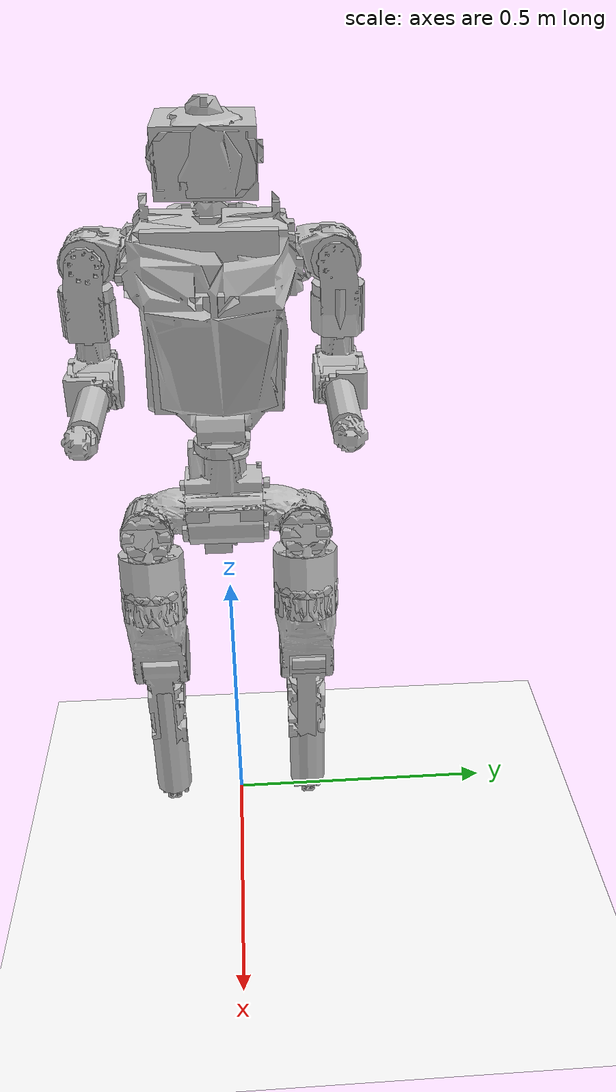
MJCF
<mujoco model="vt_human_v2">
  <compiler angle="radian" meshdir="meshes/"/>

  <asset>
    <mesh name="base_link" content_type="model/stl" file="base_link.STL"/>
    <mesh name="left_hip_pitch_link" content_type="model/stl" file="left_hip_pitch_link.STL"/>
    <mesh name="left_hip_roll_link" content_type="model/stl" file="left_hip_roll_link.STL"/>
    <mesh name="left_hip_yaw_link" content_type="model/stl" file="left_hip_yaw_link.STL"/>
    <mesh name="left_knee_link" content_type="model/stl" file="left_knee_link.STL"/>
    <mesh name="left_ankle_pitch_link" content_type="model/stl" file="left_ankle_pitch_link.STL"/>
    <mesh name="left_ankle_roll_link" content_type="model/stl" file="left_ankle_roll_link.STL"/>
    <mesh name="right_hip_pitch_link" content_type="model/stl" file="right_hip_pitch_link.STL"/>
    <mesh name="right_hip_roll_link" content_type="model/stl" file="right_hip_roll_link.STL"/>
    <mesh name="right_hip_yaw_link" content_type="model/stl" file="right_hip_yaw_link.STL"/>
    <mesh name="right_knee_link" content_type="model/stl" file="right_knee_link.STL"/>
    <mesh name="right_ankle_pitch_link" content_type="model/stl" file="right_ankle_pitch_link.STL"/>
    <mesh name="right_ankle_roll_link" content_type="model/stl" file="right_ankle_roll_link.STL"/>
    <mesh name="waist_yaw_link" content_type="model/stl" file="waist_yaw_link.STL"/>
    <mesh name="waist_pitch_link" content_type="model/stl" file="waist_pitch_link.STL"/>
    <mesh name="left_shoulder_pitch_link" content_type="model/stl" file="left_shoulder_pitch_link.STL"/>
    <mesh name="left_shoulder_roll_link" content_type="model/stl" file="left_shoulder_roll_link.STL"/>
    <mesh name="left_shoulder_yaw_link" content_type="model/stl" file="left_shoulder_yaw_link.STL"/>
    <mesh name="left_elbow_link" content_type="model/stl" file="left_elbow_link.STL"/>
    <mesh name="right_shoulder_pitch_link" content_type="model/stl" file="right_shoulder_pitch_link.STL"/>
    <mesh name="right_shoulder_roll_link" content_type="model/stl" file="right_shoulder_roll_link.STL"/>
    <mesh name="right_shoulder_yaw_link" content_type="model/stl" file="right_shoulder_yaw_link.STL"/>
    <mesh name="right_elbow_link" content_type="model/stl" file="right_elbow_link.STL"/>

    <texture type="skybox" builtin="gradient" rgb1="1 1 1" rgb2="1 1 1" width="800" height="800"/>
    <texture type="2d" name="groundplane" builtin="checker" mark="edge" rgb1="1 1 1" rgb2="1 1 1" markrgb="0 0 0" width="300" height="300"/>
    <material name="groundplane" texture="groundplane" texuniform="true" texrepeat="5 5" reflectance="0"/>
  </asset>

    <visual>
    <headlight diffuse="0.6 0.6 0.6" ambient="0.1 0.1 0.1" specular="0.9 0.9 0.9"/>
    <rgba haze="0.15 0.25 0.35 1"/>
    <global azimuth="-140" elevation="-20" offwidth="2080" offheight="1170"/>
  </visual>

  <worldbody>
    <geom name="floor" size="0 0 0.01" type="plane" material="groundplane" contype="1" conaffinity="0" priority="1" friction="0.6" condim="3"/>
    <light diffuse=".5 .5 .5" pos="-3 -3 5" dir="3 3 -5" castshadow="true"/>

    <body name="base_link" pos="0 0 0.66">
      <inertial pos="0.00090486 -0.000693 0.0175537" quat="0.979884 0.199257 -0.0108125 0.00283359" mass="4.0106" diaginertia="0.0148956 0.0108377 0.0101691"/>
      <joint type="free"/>
      <geom type="mesh" contype="0" conaffinity="0" group="1" density="0" rgba="0.75294 0.75294 0.75294 1" mesh="base_link"/>
      <geom name="collision_pelvis_cylinder" size="0.06 0.065" quat="0.707105 0.707108 0 0" type="cylinder" rgba="0.75294 0.75294 0.75294 1"/>
      <body name="left_hip_pitch_link" pos="0 0.0757 0">
        <inertial pos="0.0125617 0.0569469 -0.0236546" quat="0.903925 0.41117 -0.117625 -0.00477622" mass="1.36296" diaginertia="0.00191632 0.00175385 0.00125078"/>
        <joint name="left_hip_pitch_joint" pos="0 0 0" axis="0 1 0" range="-1.745 2.8793" actuatorfrcrange="-120 120" armature="0.0101775"/>
        <geom type="mesh" contype="0" conaffinity="0" group="1" density="0" rgba="0.75294 0.75294 0.75294 1" mesh="left_hip_pitch_link"/>
        <geom type="mesh" contype="0" conaffinity="0" group="1" density="0" rgba="0.75294 0.75294 0.75294 1" mesh="left_hip_pitch_link"/>
        <body name="left_hip_roll_link" pos="0.0052098 0.062252 -0.029546">
          <inertial pos="0.0154391 0.00026587 -0.0834664" quat="0.710037 -0.0522932 -0.0501596 0.700426" mass="2.02753" diaginertia="0.00494113 0.00448932 0.00331638"/>
          <joint name="left_hip_roll_joint" pos="0 0 0" axis="1 0 0" range="-0.43625 1.74533" actuatorfrcrange="-90 90" armature="0.0101775"/>
          <geom type="mesh" contype="0" conaffinity="0" group="1" density="0" rgba="0.75294 0.75294 0.75294 1" mesh="left_hip_roll_link"/>
          <geom name="collision_l_hip_roll_cylinder" size="0.045 0.055" quat="0.766046 0 0.642786 0" type="cylinder" rgba="0.75294 0.75294 0.75294 1"/>
          <body name="left_hip_yaw_link" pos="0.026626 0 -0.14812">
            <inertial pos="-0.00612202 0.00024003 -0.0640879" quat="0.988436 0.00346207 0.151588 0.00204284" mass="1.19322" diaginertia="0.00556969 0.00511928 0.00276403"/>
            <joint name="left_hip_yaw_joint" pos="0 0 0" axis="0 0 1" range="-1.5705 1.5705" actuatorfrcrange="-120 120" armature="0.0101775"/>
            <geom type="mesh" contype="0" conaffinity="0" group="1" density="0" rgba="0.75294 0.75294 0.75294 1" mesh="left_hip_yaw_link"/>
            <geom name="collision_l_hip_yaw_rotor_cylinder" size="0.052 0.05" pos="-0.03 0 -0.132459" quat="0.707105 0.707108 0 0" type="cylinder" rgba="0.75294 0.75294 0.75294 1"/>
            <geom name="collision_l_hip_yaw_cylinder" size="0.058 0.061" pos="-0.00749 0 0.0418" quat="0.996195 0 -0.0871558 0" type="cylinder" rgba="0.75294 0.75294 0.75294 1"/>
            <body name="left_knee_link" pos="-0.031343 0 -0.13224">
              <inertial pos="0.00161817 0.00073644 -0.0720362" quat="0.698427 -0.00543775 0.000671023 0.71566" mass="2.50645" diaginertia="0.0273956 0.0267048 0.0021891"/>
              <joint name="left_knee_joint" pos="0 0 0" axis="0 1 0" range="-0.08725 2.3034" actuatorfrcrange="-120 120" armature="0.0251019"/>
              <geom type="mesh" contype="0" conaffinity="0" group="1" density="0" rgba="0.75294 0.75294 0.75294 1" mesh="left_knee_link"/>
              <geom name="collision_l_knee_cylinder" size="0.035 0.13" pos="0 0 -0.2" type="cylinder" rgba="0.75294 0.75294 0.75294 1"/>
              <body name="left_ankle_pitch_link" pos="0 0 -0.34">
                <inertial pos="0 0 0" quat="0.5 0.5 -0.5 0.5" mass="0.0416185" diaginertia="4.24e-06 3.57e-06 2.55e-06"/>
                <joint name="left_ankle_pitch_joint" pos="0 0 0" axis="0 1 0" range="-0.95975 0.61075" actuatorfrcrange="-70.5 70.5" armature="0.00721945"/>
                <geom type="mesh" contype="0" conaffinity="0" group="1" density="0" rgba="0.75294 0.75294 0.75294 1" mesh="left_ankle_pitch_link"/>
                <geom type="mesh" contype="0" conaffinity="0" group="1" density="0" rgba="0.75294 0.75294 0.75294 1" mesh="left_ankle_pitch_link"/>
                <body name="left_ankle_roll_link">
                  <inertial pos="-0.00550341 0 -0.0285248" quat="1.19922e-05 0.72728 4.05271e-06 0.686341" mass="0.667902" diaginertia="0.0020583 0.00200653 0.000325888"/>
                  <joint name="left_ankle_roll_joint" pos="0 0 0" axis="1 0 0" range="-0.43625 0.43625" actuatorfrcrange="-70.5 70.5" armature="0.00721945"/>
                  <geom type="mesh" contype="0" conaffinity="0" group="1" density="0" rgba="0.75294 0.75294 0.75294 1" mesh="left_ankle_roll_link"/>
                  <geom name="collision_l_foot0_cylinder" size="0.008 0.025" pos="0.065 0.03 -0.04" quat="0.707105 0 0.707108 0" type="cylinder" rgba="0.75294 0.75294 0.75294 1"/>
                  <geom name="collision_l_foot1_cylinder" size="0.008 0.105" pos="0 0.018 -0.04" quat="0.707105 0 0.707108 0" type="cylinder" rgba="0.75294 0.75294 0.75294 1"/>
                  <geom name="collision_l_foot2_cylinder" size="0.008 0.108" pos="0.001222 0.0117 -0.04" quat="0.707105 0 0.707108 0" type="cylinder" rgba="0.75294 0.75294 0.75294 1"/>
                  <geom name="collision_l_foot3_cylinder" size="0.008 0.11" pos="0.0021 0 -0.04" quat="0.707105 0 0.707108 0" type="cylinder" rgba="0.75294 0.75294 0.75294 1"/>
                  <geom name="collision_l_foot4_cylinder" size="0.008 0.108" pos="0.001222 -0.0117 -0.04" quat="0.707105 0 0.707108 0" type="cylinder" rgba="0.75294 0.75294 0.75294 1"/>
                  <geom name="collision_l_foot5_cylinder" size="0.008 0.105" pos="0 -0.018 -0.04" quat="0.707105 0 0.707108 0" type="cylinder" rgba="0.75294 0.75294 0.75294 1"/>
                  <geom name="collision_l_foot6_cylinder" size="0.008 0.025" pos="0.065 -0.03 -0.04" quat="0.707105 0 0.707108 0" type="cylinder" rgba="0.75294 0.75294 0.75294 1"/>
                        <body name="left_toe_link" pos="0.1 0.0 -0.028"/>
</body>
                      <body name="left_heel_link" pos="-0.09 0.0 -0.028"/>
</body>
            </body>
          </body>
        </body>
      </body>
      <body name="right_hip_pitch_link" pos="0 -0.075698 0">
        <inertial pos="0.0125683 -0.056918 -0.0236958" quat="0.412094 0.903887 0.0119912 0.114122" mass="1.36295" diaginertia="0.00191659 0.00175365 0.00125086"/>
        <joint name="right_hip_pitch_joint" pos="0 0 0" axis="0 1 0" range="-1.745 2.8793" actuatorfrcrange="-120 120" armature="0.0101775"/>
        <geom type="mesh" contype="0" conaffinity="0" group="1" density="0" rgba="0.75294 0.75294 0.75294 1" mesh="right_hip_pitch_link"/>
        <geom type="mesh" contype="0" conaffinity="0" group="1" density="0" rgba="0.75294 0.75294 0.75294 1" mesh="right_hip_pitch_link"/>
        <body name="right_hip_roll_link" pos="0.0052098 -0.062252 -0.029546">
          <inertial pos="0.0153841 -0.00024058 -0.0835207" quat="0.699191 -0.0500302 -0.0525599 0.711243" mass="2.02592" diaginertia="0.00492787 0.00447574 0.0033132"/>
          <joint name="right_hip_roll_joint" pos="0 0 0" axis="1 0 0" range="-1.74533 0.43625" actuatorfrcrange="-90 90" armature="0.0101775"/>
          <geom type="mesh" contype="0" conaffinity="0" group="1" density="0" rgba="0.75294 0.75294 0.75294 1" mesh="right_hip_roll_link"/>
          <geom name="collision_r_hip_roll_cylinder" size="0.045 0.055" quat="0.766046 0 0.642786 0" type="cylinder" rgba="0.75294 0.75294 0.75294 1"/>
          <body name="right_hip_yaw_link" pos="0.0266261 0 -0.148125">
            <inertial pos="-0.00618961 -0.00023919 -0.0640402" quat="0.988289 -0.00376047 0.152453 -0.00529608" mass="1.19323" diaginertia="0.00556671 0.0051156 0.00276347"/>
            <joint name="right_hip_yaw_joint" pos="0 0 0" axis="0 0 1" range="-1.5705 1.5705" actuatorfrcrange="-120 120" armature="0.0101775"/>
            <geom type="mesh" contype="0" conaffinity="0" group="1" density="0" rgba="0.75294 0.75294 0.75294 1" mesh="right_hip_yaw_link"/>
            <geom name="collision_r_hip_yaw_cylinder" size="0.058 0.061" pos="-0.00749 0 0.0418" quat="0.996195 0 -0.0871558 0" type="cylinder" rgba="0.75294 0.75294 0.75294 1"/>
            <geom name="collision_r_hip_yaw_rotor_cylinder" size="0.052 0.05" pos="-0.03 0 -0.132459" quat="0.707105 0.707108 0 0" type="cylinder" rgba="0.75294 0.75294 0.75294 1"/>
            <body name="right_knee_link" pos="-0.031343 0 -0.13224">
              <inertial pos="0.00160942 -0.00073487 -0.0717414" quat="0.716262 0.000917112 -0.00545378 0.69781" mass="2.50337" diaginertia="0.0271914 0.0264983 0.00218801"/>
              <joint name="right_knee_joint" pos="0 0 0" axis="0 1 0" range="-0.08725 2.3034" actuatorfrcrange="-120 120" armature="0.0251019"/>
              <geom type="mesh" contype="0" conaffinity="0" group="1" density="0" rgba="0.75294 0.75294 0.75294 1" mesh="right_knee_link"/>
              <geom name="collision_r_knee_cylinder" size="0.035 0.13" pos="0 0 -0.2" type="cylinder" rgba="0.75294 0.75294 0.75294 1"/>
              <body name="right_ankle_pitch_link" pos="0 0 -0.34">
                <inertial pos="0 0 0" quat="0.5 0.5 -0.5 0.5" mass="0.0416185" diaginertia="4.24e-06 3.57e-06 2.55e-06"/>
                <joint name="right_ankle_pitch_joint" pos="0 0 0" axis="0 1 0" range="-0.95975 0.61075" actuatorfrcrange="-70.5 70.5" armature="0.00721945"/>
                <geom type="mesh" contype="0" conaffinity="0" group="1" density="0" rgba="0.75294 0.75294 0.75294 1" mesh="right_ankle_pitch_link"/>
                <geom type="mesh" contype="0" conaffinity="0" group="1" density="0" rgba="0.75294 0.75294 0.75294 1" mesh="right_ankle_pitch_link"/>
                <body name="right_ankle_roll_link">
                  <inertial pos="-0.00550341 0 -0.0285248" quat="1.19922e-05 0.72728 4.05271e-06 0.686341" mass="0.667902" diaginertia="0.0020583 0.00200653 0.000325888"/>
                  <joint name="right_ankle_roll_joint" pos="0 0 0" axis="1 0 0" range="-0.43625 0.43625" actuatorfrcrange="-70.5 70.5" armature="0.00721945"/>
                  <geom type="mesh" contype="0" conaffinity="0" group="1" density="0" rgba="0.75294 0.75294 0.75294 1" mesh="right_ankle_roll_link"/>
                  <geom name="collision_r_foot0_cylinder" size="0.008 0.025" pos="0.065 0.03 -0.04" quat="0.707105 0 0.707108 0" type="cylinder" rgba="0.75294 0.75294 0.75294 1"/>
                  <geom name="collision_r_foot1_cylinder" size="0.008 0.105" pos="0 0.018 -0.04" quat="0.707105 0 0.707108 0" type="cylinder" rgba="0.75294 0.75294 0.75294 1"/>
                  <geom name="collision_r_foot2_cylinder" size="0.008 0.108" pos="0.001222 0.0117 -0.04" quat="0.707105 0 0.707108 0" type="cylinder" rgba="0.75294 0.75294 0.75294 1"/>
                  <geom name="collision_r_foot3_cylinder" size="0.008 0.11" pos="0.0021 0 -0.04" quat="0.707105 0 0.707108 0" type="cylinder" rgba="0.75294 0.75294 0.75294 1"/>
                  <geom name="collision_r_foot4_cylinder" size="0.008 0.108" pos="0.001222 -0.0117 -0.04" quat="0.707105 0 0.707108 0" type="cylinder" rgba="0.75294 0.75294 0.75294 1"/>
                  <geom name="collision_r_foot5_cylinder" size="0.008 0.105" pos="0 -0.018 -0.04" quat="0.707105 0 0.707108 0" type="cylinder" rgba="0.75294 0.75294 0.75294 1"/>
                  <geom name="collision_r_foot6_cylinder" size="0.008 0.025" pos="0.065 -0.03 -0.04" quat="0.707105 0 0.707108 0" type="cylinder" rgba="0.75294 0.75294 0.75294 1"/>
                        <body name="right_toe_link" pos="0.1 0.0 -0.028"/>
</body>
                      <body name="right_heel_link" pos="-0.09 0.0 -0.028"/>
</body>
            </body>
          </body>
        </body>
      </body>
      <body name="waist_yaw_link" pos="0 0 0.1305">
        <inertial pos="0.00023603 0.00523516 0.0207713" quat="0.507445 0.457888 -0.453106 0.572305" mass="0.418261" diaginertia="0.000508641 0.000479672 0.000436847"/>
        <joint name="waist_yaw_joint" pos="0 0 0" axis="0 0 1" range="-1.5705 1.5705" actuatorfrcrange="-70.5 70.5" armature="0.00721945"/>
        <geom type="mesh" contype="0" conaffinity="0" group="1" density="0" rgba="0.75294 0.75294 0.75294 1" mesh="waist_yaw_link"/>
        <geom name="collision_waist_yaw_cylinder" size="0.04 0.04" pos="0 0 0.035742" quat="0.707105 0.707108 0 0" type="cylinder" rgba="0.75294 0.75294 0.75294 1"/>
        <body name="waist_pitch_link" pos="0 0 0.0395">
          <inertial pos="-0.00034844 -0.00108544 0.198283" quat="0.99987 0.0145648 -0.00355876 0.00587002" mass="11.7993" diaginertia="0.234365 0.194865 0.0877206"/>
          <joint name="waist_pitch_joint" pos="0 0 0" axis="0 1 0" range="-0.78525 0.78525" actuatorfrcrange="-70.5 70.5" armature="0.00721945"/>
          <geom type="mesh" contype="0" conaffinity="0" group="1" density="0" rgba="0.75294 0.75294 0.75294 1" mesh="waist_pitch_link"/>
          <geom name="collision_body_box" size="0.0725435 0.103 0.143595" pos="-0.0134 0 0.183" type="box" rgba="0.75294 0.75294 0.75294 1"/>
          <geom name="collision_head_box" size="0.08 0.075 0.05" pos="0 0 0.425049" type="box" rgba="0.75294 0.75294 0.75294 1"/>
          <body name="left_shoulder_pitch_link" pos="0 0.128491 0.279596">
            <inertial pos="-0.0063373 0.051535 -0.0037644" quat="0.57995 0.385935 -0.415159 0.585111" mass="0.90934" diaginertia="0.00104707 0.000994552 0.000751153"/>
            <joint name="left_shoulder_pitch_joint" pos="0 0 0" axis="0 1 0" range="-2.8269 2.8269" actuatorfrcrange="-60 60" armature="0.00721945"/>
            <geom type="mesh" contype="0" conaffinity="0" group="1" density="0" rgba="0.75294 0.75294 0.75294 1" mesh="left_shoulder_pitch_link"/>
            <geom name="collision_l_shoulder_pitch_cylinder" size="0.038 0.039" pos="-0.0065 0.0609 -0.006" quat="0.707105 0 0.707108 0" type="cylinder" rgba="0.75294 0.75294 0.75294 1"/>
            <body name="left_shoulder_roll_link" pos="-0.0064156 0.061525 -0.007108">
              <inertial pos="0.0064282 0.0057732 -0.07091" quat="0.71155 -0.00827035 -0.0520054 0.70066" mass="0.96873" diaginertia="0.00183764 0.00151536 0.00115819"/>
              <joint name="left_shoulder_roll_joint" pos="0 0 0" axis="1 0 0" range="-0.52001 2.75187" actuatorfrcrange="-60 60" armature="0.00721945"/>
              <geom type="mesh" contype="0" conaffinity="0" group="1" density="0" rgba="0.75294 0.75294 0.75294 1" mesh="left_shoulder_roll_link"/>
              <geom name="collision_l_shoulder_roll_cylinder" size="0.042 0.0375" pos="0.0074 0.00651 -0.079" type="cylinder" rgba="0.75294 0.75294 0.75294 1"/>
              <body name="left_shoulder_yaw_link" pos="0.00689778 0.00616935 -0.111857">
                <inertial pos="0.0091185 -0.00060886 -0.078241" quat="0.736608 -0.122016 -0.08794 0.659384" mass="0.76043" diaginertia="0.000908404 0.000869837 0.000558509"/>
                <joint name="left_shoulder_yaw_joint" pos="0 0 0" axis="0 0 1" range="-2.7397 2.7397" actuatorfrcrange="-60 60" armature="0.00721945"/>
                <geom type="mesh" contype="0" conaffinity="0" group="1" density="0" rgba="0.75294 0.75294 0.75294 1" mesh="left_shoulder_yaw_link"/>
                <geom name="collision_l_shoulder_yaw_cylinder" size="0.04 0.04" pos="0.01148 0 -0.0859" quat="0.707105 0.707108 0 0" type="cylinder" rgba="0.75294 0.75294 0.75294 1"/>
                <body name="left_elbow_link" pos="0.013191 -0.001406 -0.087782">
                  <inertial pos="0.10427 0.013999 0.00011767" quat="0.0368941 0.705087 -0.0619341 0.705447" mass="0.38475" diaginertia="0.00314013 0.00312587 0.000183575"/>
                  <joint name="left_elbow_joint" pos="0 0 0" axis="0 1 0" range="-0.61075 2.7048" actuatorfrcrange="-60 60" armature="0.00721945"/>
                  <geom type="mesh" contype="0" conaffinity="0" group="1" density="0" rgba="0.75294 0.75294 0.75294 1" mesh="left_elbow_link"/>
                  <geom name="collision_l_elbow_cylinder" size="0.025 0.07" pos="0.121617 0 0" quat="0.707105 0 0.707108 0" type="cylinder" rgba="0.75294 0.75294 0.75294 1"/>
                        <body name="left_wrist_task" pos="0.18 0.0 0.0"/>
</body>
              </body>
            </body>
          </body>
          <body name="right_shoulder_pitch_link" pos="0 -0.12949 0.2796">
            <inertial pos="-0.0063373 -0.051535 -0.0037644" quat="0.385935 0.57995 -0.585111 0.415159" mass="0.90934" diaginertia="0.00104707 0.000994552 0.000751153"/>
            <joint name="right_shoulder_pitch_joint" pos="0 0 0" axis="0 1 0" range="-2.8269 2.8269" actuatorfrcrange="-60 60" armature="0.00721945"/>
            <geom type="mesh" contype="0" conaffinity="0" group="1" density="0" rgba="0.75294 0.75294 0.75294 1" mesh="right_shoulder_pitch_link"/>
            <geom name="collision_r_shoulder_pitch_cylinder" size="0.038 0.039" pos="-0.0065 -0.0609 -0.006" quat="0.707105 0 0.707108 0" type="cylinder" rgba="0.75294 0.75294 0.75294 1"/>
            <body name="right_shoulder_roll_link" pos="-0.0065 -0.061519 -0.007086">
              <inertial pos="0.0064282 -0.0057732 -0.07091" quat="0.70066 -0.0520054 -0.00827035 0.71155" mass="0.96873" diaginertia="0.00183764 0.00151536 0.00115819"/>
              <joint name="right_shoulder_roll_joint" pos="0 0 0" axis="1 0 0" range="-2.75187 0.52001" actuatorfrcrange="-60 60" armature="0.00721945"/>
              <geom type="mesh" contype="0" conaffinity="0" group="1" density="0" rgba="0.75294 0.75294 0.75294 1" mesh="right_shoulder_roll_link"/>
              <geom name="collision_r_shoulder_roll_cylinder" size="0.042 0.0375" pos="0.0074 -0.00651 -0.079" type="cylinder" rgba="0.75294 0.75294 0.75294 1"/>
              <body name="right_shoulder_yaw_link" pos="0.00651 -0.0061759 -0.11188">
                <inertial pos="0.0091185 0.00060886 -0.078241" quat="0.659384 -0.08794 -0.122016 0.736608" mass="0.76043" diaginertia="0.000908404 0.000869837 0.000558509"/>
                <joint name="right_shoulder_yaw_joint" pos="0 0 0" axis="0 0 1" range="-2.7397 2.7397" actuatorfrcrange="-60 60" armature="0.00721945"/>
                <geom type="mesh" contype="0" conaffinity="0" group="1" density="0" rgba="0.75294 0.75294 0.75294 1" mesh="right_shoulder_yaw_link"/>
                <geom name="collision_r_shoulder_yaw_cylinder" size="0.04 0.04" pos="0.01148 0 -0.0859" quat="0.707105 0.707108 0 0" type="cylinder" rgba="0.75294 0.75294 0.75294 1"/>
                <body name="right_elbow_link" pos="0.012891 0.0011753 -0.087829">
                  <inertial pos="0.10427 -0.013999 0.00011767" quat="-0.0368941 0.705087 0.0619341 0.705447" mass="0.38475" diaginertia="0.00314013 0.00312587 0.000183575"/>
                  <joint name="right_elbow_joint" pos="0 0 0" axis="0 1 0" range="-0.61075 2.7048" actuatorfrcrange="-60 60" armature="0.00721945"/>
                  <geom type="mesh" contype="0" conaffinity="0" group="1" density="0" rgba="0.75294 0.75294 0.75294 1" mesh="right_elbow_link"/>
                  <geom name="collision_r_elbow_cylinder" size="0.025 0.07" pos="0.121617 0 0" quat="0.707105 0 0.707108 0" type="cylinder" rgba="0.75294 0.75294 0.75294 1"/>
                        <body name="right_wrist_task" pos="0.18 0.0 0.0"/>
</body>
              </body>
            </body>
          </body>
        </body>
      </body>
    </body>
  </worldbody>
  <contact>
    <exclude body1="base_link" body2="left_hip_roll_link"/>
    <exclude body1="base_link" body2="left_hip_yaw_link"/>
    <exclude body1="base_link" body2="right_hip_roll_link"/>
    <exclude body1="base_link" body2="right_hip_yaw_link"/>
  </contact>

</mujoco>
